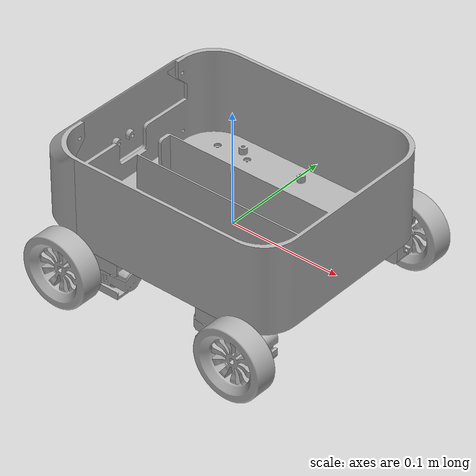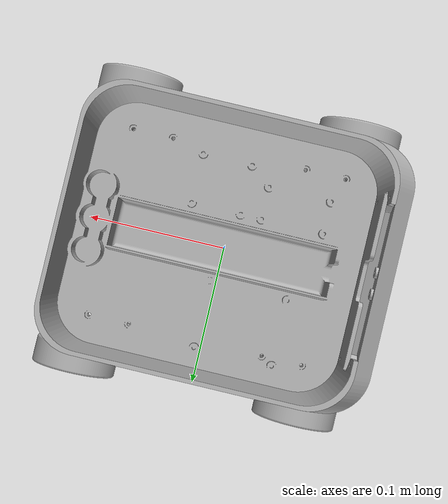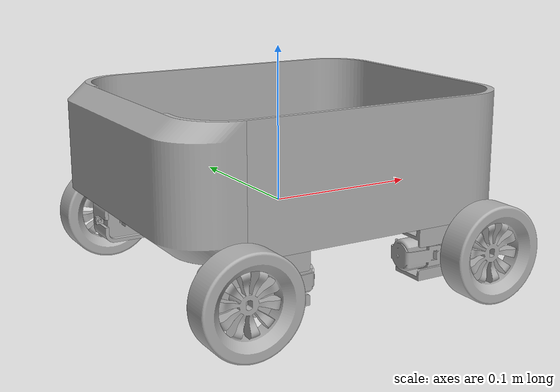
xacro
<?xml version="1.0" ?>
<robot name="irrobot" xmlns:xacro="http://www.ros.org/wiki/xacro">

<xacro:include filename="$(find irrobot_description)/urdf/materials.xacro" />
<xacro:include filename="$(find irrobot_description)/urdf/irrobot.trans" />
<xacro:include filename="$(find irrobot_description)/urdf/irrobot.gazebo" />
<link name="base_link">
  <inertial>
    <origin xyz="0.012646128308455011 -2.323796530584795e-05 0.019742145097622663" rpy="0 0 0"/>
    <mass value="2.574122761039487"/>
    <inertia ixx="0.011897" iyy="0.014767" izz="0.023826" ixy="-1.5e-05" iyz="-2e-06" ixz="-0.000348"/>
  </inertial>
  <visual>
    <origin xyz="0 0 0" rpy="0 0 0"/>
    <geometry>
      <mesh filename="file://$(find irrobot_description)/meshes/base_link.stl" scale="0.001 0.001 0.001"/>
    </geometry>
    <material name="silver"/>
  </visual>
  <collision>
    <origin xyz="0 0 0" rpy="0 0 0"/>
    <geometry>
      <mesh filename="file://$(find irrobot_description)/meshes/base_link.stl" scale="0.001 0.001 0.001"/>
    </geometry>
  </collision>
</link>

<link name="front_base_1">
  <inertial>
    <origin xyz="-0.004484384677440348 -0.057999511488397534 -0.02703927126859043" rpy="0 0 0"/>
    <mass value="0.5675476589192235"/>
    <inertia ixx="0.002217" iyy="0.000313" izz="0.001971" ixy="0.0" iyz="0.0" ixz="-0.0"/>
  </inertial>
  <visual>
    <origin xyz="0.103 -0.058 -0.063232" rpy="0 0 0"/>
    <geometry>
      <mesh filename="file://$(find irrobot_description)/meshes/front_base_1.stl" scale="0.001 0.001 0.001"/>
    </geometry>
    <material name="silver"/>
  </visual>
  <collision>
    <origin xyz="0.103 -0.058 -0.063232" rpy="0 0 0"/>
    <geometry>
      <mesh filename="file://$(find irrobot_description)/meshes/front_base_1.stl" scale="0.001 0.001 0.001"/>
    </geometry>
  </collision>
</link>

<link name="box_motor_1_1">
  <inertial>
    <origin xyz="0.010634642706834702 0.010756073221909426 -0.013698698265978627" rpy="0 0 0"/>
    <mass value="0.0969363525800491"/>
    <inertia ixx="2.1e-05" iyy="4.3e-05" izz="3.7e-05" ixy="1e-06" iyz="3e-06" ixz="-2e-06"/>
  </inertial>
  <visual>
    <origin xyz="0.075 -0.07 0.002768" rpy="0 0 0"/>
    <geometry>
      <mesh filename="file://$(find irrobot_description)/meshes/box_motor_1_1.stl" scale="0.001 0.001 0.001"/>
    </geometry>
    <material name="silver"/>
  </visual>
  <collision>
    <origin xyz="0.075 -0.07 0.002768" rpy="0 0 0"/>
    <geometry>
      <mesh filename="file://$(find irrobot_description)/meshes/box_motor_1_1.stl" scale="0.001 0.001 0.001"/>
    </geometry>
  </collision>
</link>

<link name="box_motor_2_1">
  <inertial>
    <origin xyz="-0.010634642706834688 0.010756073221909399 -0.013698698265978547" rpy="0 0 0"/>
    <mass value="0.0969363525800495"/>
    <inertia ixx="2.1e-05" iyy="4.3e-05" izz="3.7e-05" ixy="-1e-06" iyz="3e-06" ixz="2e-06"/>
  </inertial>
  <visual>
    <origin xyz="-0.085 -0.07 0.002768" rpy="0 0 0"/>
    <geometry>
      <mesh filename="file://$(find irrobot_description)/meshes/box_motor_2_1.stl" scale="0.001 0.001 0.001"/>
    </geometry>
    <material name="silver"/>
  </visual>
  <collision>
    <origin xyz="-0.085 -0.07 0.002768" rpy="0 0 0"/>
    <geometry>
      <mesh filename="file://$(find irrobot_description)/meshes/box_motor_2_1.stl" scale="0.001 0.001 0.001"/>
    </geometry>
  </collision>
</link>

<link name="box_motor_3_1">
  <inertial>
    <origin xyz="0.010634642706834702 -0.010756073221909579 -0.013698698265978668" rpy="0 0 0"/>
    <mass value="0.09693635258004872"/>
    <inertia ixx="2.1e-05" iyy="4.3e-05" izz="3.7e-05" ixy="-1e-06" iyz="-3e-06" ixz="-2e-06"/>
  </inertial>
  <visual>
    <origin xyz="0.075 0.07 0.002768" rpy="0 0 0"/>
    <geometry>
      <mesh filename="file://$(find irrobot_description)/meshes/box_motor_3_1.stl" scale="0.001 0.001 0.001"/>
    </geometry>
    <material name="silver"/>
  </visual>
  <collision>
    <origin xyz="0.075 0.07 0.002768" rpy="0 0 0"/>
    <geometry>
      <mesh filename="file://$(find irrobot_description)/meshes/box_motor_3_1.stl" scale="0.001 0.001 0.001"/>
    </geometry>
  </collision>
</link>

<link name="box_motor_4_1">
  <inertial>
    <origin xyz="-0.010634642706834604 -0.010756073221909551 -0.013698698265978602" rpy="0 0 0"/>
    <mass value="0.09693635258004962"/>
    <inertia ixx="2.1e-05" iyy="4.3e-05" izz="3.7e-05" ixy="1e-06" iyz="-3e-06" ixz="2e-06"/>
  </inertial>
  <visual>
    <origin xyz="-0.085 0.07 0.002768" rpy="0 0 0"/>
    <geometry>
      <mesh filename="file://$(find irrobot_description)/meshes/box_motor_4_1.stl" scale="0.001 0.001 0.001"/>
    </geometry>
    <material name="silver"/>
  </visual>
  <collision>
    <origin xyz="-0.085 0.07 0.002768" rpy="0 0 0"/>
    <geometry>
      <mesh filename="file://$(find irrobot_description)/meshes/box_motor_4_1.stl" scale="0.001 0.001 0.001"/>
    </geometry>
  </collision>
</link>

<link name="motor_right_1_1">
  <inertial>
    <origin xyz="0.015523126340643192 0.0096279023719327 -2.7461529960443043e-07" rpy="0 0 0"/>
    <mass value="0.17583049484672683"/>
    <inertia ixx="1.2e-05" iyy="5.1e-05" izz="5e-05" ixy="-1e-06" iyz="-0.0" ixz="-0.0"/>
  </inertial>
  <visual>
    <origin xyz="0.0794 0.0915 0.021218" rpy="0 0 0"/>
    <geometry>
      <mesh filename="file://$(find irrobot_description)/meshes/motor_right_1_1.stl" scale="0.001 0.001 0.001"/>
    </geometry>
    <material name="silver"/>
  </visual>
  <collision>
    <origin xyz="0.0794 0.0915 0.021218" rpy="0 0 0"/>
    <geometry>
      <mesh filename="file://$(find irrobot_description)/meshes/motor_right_1_1.stl" scale="0.001 0.001 0.001"/>
    </geometry>
  </collision>
</link>

<link name="motor_right_2_1">
  <inertial>
    <origin xyz="-0.015523126340642901 0.0096279023719327 -2.7461003963488717e-07" rpy="0 0 0"/>
    <mass value="0.17583049484672683"/>
    <inertia ixx="1.2e-05" iyy="5.1e-05" izz="5e-05" ixy="1e-06" iyz="0.0" ixz="-0.0"/>
  </inertial>
  <visual>
    <origin xyz="-0.0894 0.0915 0.021218" rpy="0 0 0"/>
    <geometry>
      <mesh filename="file://$(find irrobot_description)/meshes/motor_right_2_1.stl" scale="0.001 0.001 0.001"/>
    </geometry>
    <material name="silver"/>
  </visual>
  <collision>
    <origin xyz="-0.0894 0.0915 0.021218" rpy="0 0 0"/>
    <geometry>
      <mesh filename="file://$(find irrobot_description)/meshes/motor_right_2_1.stl" scale="0.001 0.001 0.001"/>
    </geometry>
  </collision>
</link>

<link name="motor_left_2_1">
  <inertial>
    <origin xyz="-0.015523126340643054 -0.009627902371932881 -2.746152995211637e-07" rpy="0 0 0"/>
    <mass value="0.17583049484672683"/>
    <inertia ixx="1.2e-05" iyy="5.1e-05" izz="5e-05" ixy="-1e-06" iyz="0.0" ixz="0.0"/>
  </inertial>
  <visual>
    <origin xyz="-0.0894 -0.0915 0.021218" rpy="0 0 0"/>
    <geometry>
      <mesh filename="file://$(find irrobot_description)/meshes/motor_left_2_1.stl" scale="0.001 0.001 0.001"/>
    </geometry>
    <material name="silver"/>
  </visual>
  <collision>
    <origin xyz="-0.0894 -0.0915 0.021218" rpy="0 0 0"/>
    <geometry>
      <mesh filename="file://$(find irrobot_description)/meshes/motor_left_2_1.stl" scale="0.001 0.001 0.001"/>
    </geometry>
  </collision>
</link>

<link name="motor_left_1_1">
  <inertial>
    <origin xyz="0.015523126340643026 -0.009627902371932937 -2.746100396210094e-07" rpy="0 0 0"/>
    <mass value="0.17583049484672683"/>
    <inertia ixx="1.2e-05" iyy="5.1e-05" izz="5e-05" ixy="1e-06" iyz="-0.0" ixz="0.0"/>
  </inertial>
  <visual>
    <origin xyz="0.0794 -0.0915 0.021218" rpy="0 0 0"/>
    <geometry>
      <mesh filename="file://$(find irrobot_description)/meshes/motor_left_1_1.stl" scale="0.001 0.001 0.001"/>
    </geometry>
    <material name="silver"/>
  </visual>
  <collision>
    <origin xyz="0.0794 -0.0915 0.021218" rpy="0 0 0"/>
    <geometry>
      <mesh filename="file://$(find irrobot_description)/meshes/motor_left_1_1.stl" scale="0.001 0.001 0.001"/>
    </geometry>
  </collision>
</link>

<link name="left_wheel_1_1">
  <inertial>
    <origin xyz="0.20219999965727325 0.033097991424556564 -0.062300274612669584" rpy="0 0 0"/>
    <mass value="0.2627861963198363"/>
    <inertia ixx="8.7e-05" iyy="0.000159" izz="8.7e-05" ixy="0.0" iyz="0.0" ixz="0.0"/>
  </inertial>
  <visual>
    <origin xyz="0.2816 -0.070282 -0.041082" rpy="0 0 0"/>
    <geometry>
      <mesh filename="file://$(find irrobot_description)/meshes/left_wheel_1_1.stl" scale="0.001 0.001 0.001"/>
    </geometry>
    <material name="silver"/>
  </visual>
  <collision>
    <origin xyz="0.2816 -0.070282 -0.041082" rpy="0 0 0"/>
    <geometry>
      <mesh filename="file://$(find irrobot_description)/meshes/left_wheel_1_1.stl" scale="0.001 0.001 0.001"/>
    </geometry>
  </collision>
</link>

<link name="left_wheel_2_1">
  <inertial>
    <origin xyz="-0.2021999996572733 0.03309799142455658 -0.10650027461266952" rpy="0 0 0"/>
    <mass value="0.2627861963198363"/>
    <inertia ixx="8.7e-05" iyy="0.000159" izz="8.7e-05" ixy="-0.0" iyz="0.0" ixz="0.0"/>
  </inertial>
  <visual>
    <origin xyz="-0.2916 -0.070282 -0.085282" rpy="0 0 0"/>
    <geometry>
      <mesh filename="file://$(find irrobot_description)/meshes/left_wheel_2_1.stl" scale="0.001 0.001 0.001"/>
    </geometry>
    <material name="silver"/>
  </visual>
  <collision>
    <origin xyz="-0.2916 -0.070282 -0.085282" rpy="0 0 0"/>
    <geometry>
      <mesh filename="file://$(find irrobot_description)/meshes/left_wheel_2_1.stl" scale="0.001 0.001 0.001"/>
    </geometry>
  </collision>
</link>

<link name="right_wheel_1_1">
  <inertial>
    <origin xyz="0.0011999996572734373 -0.03309799142455687 0.06229972538733035" rpy="0 0 0"/>
    <mass value="0.2627861963198363"/>
    <inertia ixx="8.7e-05" iyy="0.000159" izz="8.7e-05" ixy="0.0" iyz="0.0" ixz="0.0"/>
  </inertial>
  <visual>
    <origin xyz="0.0806 0.070282 0.083518" rpy="0 0 0"/>
    <geometry>
      <mesh filename="file://$(find irrobot_description)/meshes/right_wheel_1_1.stl" scale="0.001 0.001 0.001"/>
    </geometry>
    <material name="silver"/>
  </visual>
  <collision>
    <origin xyz="0.0806 0.070282 0.083518" rpy="0 0 0"/>
    <geometry>
      <mesh filename="file://$(find irrobot_description)/meshes/right_wheel_1_1.stl" scale="0.001 0.001 0.001"/>
    </geometry>
  </collision>
</link>

<link name="right_wheel_2_1">
  <inertial>
    <origin xyz="-0.0011999996572732013 -0.03309799142455683 0.1064997253873304" rpy="0 0 0"/>
    <mass value="0.2627861963198363"/>
    <inertia ixx="8.7e-05" iyy="0.000159" izz="8.7e-05" ixy="0.0" iyz="-0.0" ixz="0.0"/>
  </inertial>
  <visual>
    <origin xyz="-0.0906 0.070282 0.127718" rpy="0 0 0"/>
    <geometry>
      <mesh filename="file://$(find irrobot_description)/meshes/right_wheel_2_1.stl" scale="0.001 0.001 0.001"/>
    </geometry>
    <material name="silver"/>
  </visual>
  <collision>
    <origin xyz="-0.0906 0.070282 0.127718" rpy="0 0 0"/>
    <geometry>
      <mesh filename="file://$(find irrobot_description)/meshes/right_wheel_2_1.stl" scale="0.001 0.001 0.001"/>
    </geometry>
  </collision>
</link>

<joint name="front_joint" type="fixed">
  <origin xyz="-0.103 0.058 0.063232" rpy="0 0 0"/>
  <parent link="base_link"/>
  <child link="front_base_1"/>
</joint>

<joint name="box_motor_1_joint" type="fixed">
  <origin xyz="-0.075 0.07 -0.002768" rpy="0 0 0"/>
  <parent link="base_link"/>
  <child link="box_motor_1_1"/>
</joint>

<joint name="box_motor_2_joint" type="fixed">
  <origin xyz="0.085 0.07 -0.002768" rpy="0 0 0"/>
  <parent link="base_link"/>
  <child link="box_motor_2_1"/>
</joint>

<joint name="box_motor_3_joint" type="fixed">
  <origin xyz="-0.075 -0.07 -0.002768" rpy="0 0 0"/>
  <parent link="base_link"/>
  <child link="box_motor_3_1"/>
</joint>

<joint name="box_motor_4_joint" type="fixed">
  <origin xyz="0.085 -0.07 -0.002768" rpy="0 0 0"/>
  <parent link="base_link"/>
  <child link="box_motor_4_1"/>
</joint>

<joint name="motor_2_joint" type="fixed">
  <origin xyz="-0.0044 -0.0215 -0.01845" rpy="0 0 0"/>
  <parent link="box_motor_3_1"/>
  <child link="motor_right_1_1"/>
</joint>

<joint name="motor_1_joint" type="fixed">
  <origin xyz="0.0044 -0.0215 -0.01845" rpy="0 0 0"/>
  <parent link="box_motor_4_1"/>
  <child link="motor_right_2_1"/>
</joint>

<joint name="motor_3_joint" type="fixed">
  <origin xyz="0.0044 0.0215 -0.01845" rpy="0 0 0"/>
  <parent link="box_motor_2_1"/>
  <child link="motor_left_2_1"/>
</joint>

<joint name="motor_4_joint" type="fixed">
  <origin xyz="-0.0044 0.0215 -0.01845" rpy="0 0 0"/>
  <parent link="box_motor_1_1"/>
  <child link="motor_left_1_1"/>
</joint>

<joint name="left_wheel_1_joint" type="continuous">
  <origin xyz="-0.2022 -0.021218 0.0623" rpy="0 0 0"/>
  <parent link="motor_left_1_1"/>
  <child link="left_wheel_1_1"/>
  <axis xyz="-0.0 1.0 0.0"/>
</joint>

<joint name="left_wheel_2_joint" type="continuous">
  <origin xyz="0.2022 -0.021218 0.1065" rpy="0 0 0"/>
  <parent link="motor_left_2_1"/>
  <child link="left_wheel_2_1"/>
  <axis xyz="0.0 1.0 0.0"/>
</joint>

<joint name="right_wheel_1_joint" type="continuous">
  <origin xyz="-0.0012 0.021218 -0.0623" rpy="0 0 0"/>
  <parent link="motor_right_1_1"/>
  <child link="right_wheel_1_1"/>
  <axis xyz="-0.0 1.0 -0.0"/>
</joint>

<joint name="right_wheel_2_joint" type="continuous">
  <origin xyz="0.0012 0.021218 -0.1065" rpy="0 0 0"/>
  <parent link="motor_right_2_1"/>
  <child link="right_wheel_2_1"/>
  <axis xyz="-0.0 1.0 0.0"/>
</joint>

</robot>

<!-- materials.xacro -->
<robot name="irrobot" xmlns:xacro="http://www.ros.org/wiki/xacro" >

<material name="silver">
  <color rgba="0.700 0.700 0.700 1.000"/>
</material>
<material name="black">
  <color rgba="0.000 0.000 0.000 1.000"/>
</material>

</robot>

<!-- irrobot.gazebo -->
<robot name="irrobot" xmlns:xacro="http://www.ros.org/wiki/xacro" >

<xacro:property name="body_color" value="Gazebo/Silver" />

<gazebo>
  <plugin name="control" filename="libgazebo_ros_control.so"/>
</gazebo>
<gazebo reference="base_link">
  <material>${body_color}</material>
  <mu1>0.2</mu1>
  <mu2>0.2</mu2>
  <self_collide>true</self_collide>
  <gravity>true</gravity>
</gazebo>

<gazebo reference="front_base_1">
  <material>${body_color}</material>
  <mu1>0.2</mu1>
  <mu2>0.2</mu2>
  <self_collide>true</self_collide>
</gazebo>

<gazebo reference="box_motor_1_1">
  <material>${body_color}</material>
  <mu1>0.2</mu1>
  <mu2>0.2</mu2>
  <self_collide>true</self_collide>
</gazebo>

<gazebo reference="box_motor_2_1">
  <material>${body_color}</material>
  <mu1>0.2</mu1>
  <mu2>0.2</mu2>
  <self_collide>true</self_collide>
</gazebo>

<gazebo reference="box_motor_3_1">
  <material>${body_color}</material>
  <mu1>0.2</mu1>
  <mu2>0.2</mu2>
  <self_collide>true</self_collide>
</gazebo>

<gazebo reference="box_motor_4_1">
  <material>${body_color}</material>
  <mu1>0.2</mu1>
  <mu2>0.2</mu2>
  <self_collide>true</self_collide>
</gazebo>

<gazebo reference="motor_right_1_1">
  <material>${body_color}</material>
  <mu1>0.2</mu1>
  <mu2>0.2</mu2>
  <self_collide>true</self_collide>
</gazebo>

<gazebo reference="motor_right_2_1">
  <material>${body_color}</material>
  <mu1>0.2</mu1>
  <mu2>0.2</mu2>
  <self_collide>true</self_collide>
</gazebo>

<gazebo reference="motor_left_2_1">
  <material>${body_color}</material>
  <mu1>0.2</mu1>
  <mu2>0.2</mu2>
  <self_collide>true</self_collide>
</gazebo>

<gazebo reference="motor_left_1_1">
  <material>${body_color}</material>
  <mu1>0.2</mu1>
  <mu2>0.2</mu2>
  <self_collide>true</self_collide>
</gazebo>

<gazebo reference="left_wheel_1_1">
  <material>${body_color}</material>
  <mu1>0.2</mu1>
  <mu2>0.2</mu2>
  <self_collide>true</self_collide>
</gazebo>

<gazebo reference="left_wheel_2_1">
  <material>${body_color}</material>
  <mu1>0.2</mu1>
  <mu2>0.2</mu2>
  <self_collide>true</self_collide>
</gazebo>

<gazebo reference="right_wheel_1_1">
  <material>${body_color}</material>
  <mu1>0.2</mu1>
  <mu2>0.2</mu2>
  <self_collide>true</self_collide>
</gazebo>

<gazebo reference="right_wheel_2_1">
  <material>${body_color}</material>
  <mu1>0.2</mu1>
  <mu2>0.2</mu2>
  <self_collide>true</self_collide>
</gazebo>

</robot>
